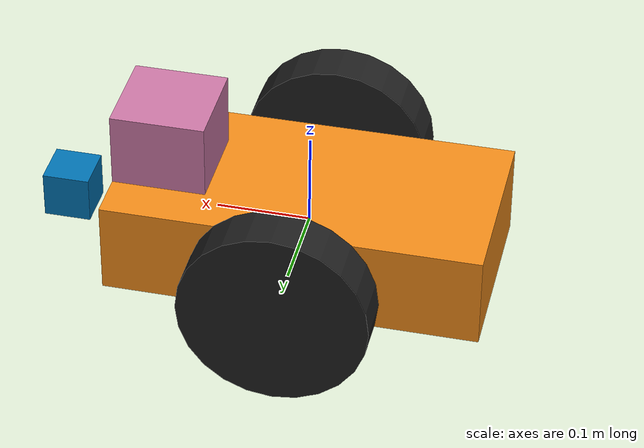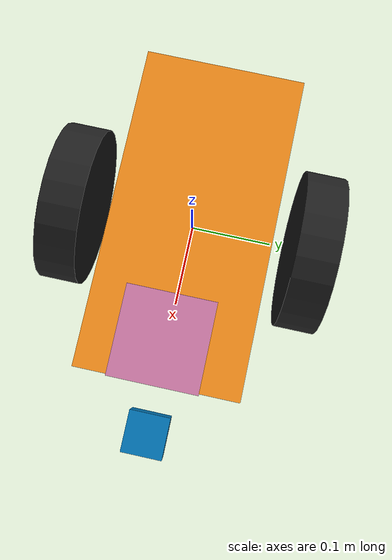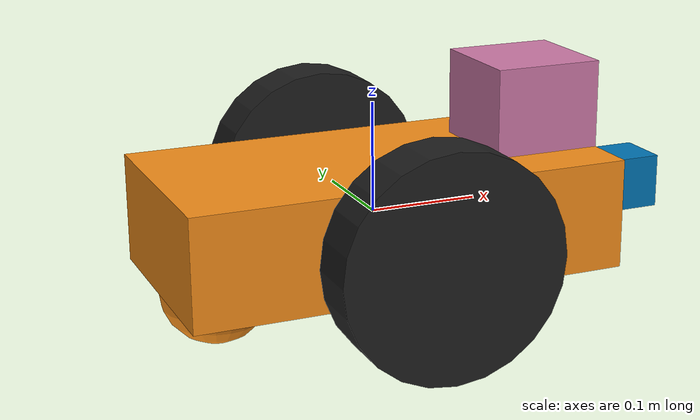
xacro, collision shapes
<?xml version='1.0'?>

<robot name="my_robot" xmlns:xacro="http://www.ros.org/wiki/xacro">

  <!-- Import all Gazebo-customization elements, including Gazebo colors -->
  <xacro:include filename="$(find my_robot)/urdf/my_robot.gazebo"/>

  <link name="robot_footprint"></link>

  <joint name="robot_footprint_joint" type="fixed">
    <origin xyz="0 0 0" rpy="0 0 0" />
    <parent link="robot_footprint"/>
    <child link="chassis" />
  </joint>

  <link name='chassis'>
    <pose>0 0 0.1 0 0 0</pose>

    <inertial>
      <mass value="15.0"/>
      <origin xyz="0.0 0 0" rpy=" 0 0 0"/>
      <inertia
          ixx="0.1" ixy="0" ixz="0"
          iyy="0.1" iyz="0"
          izz="0.1"
      />
    </inertial>

    <collision name='collision'>
      <origin xyz="0 0 0" rpy=" 0 0 0"/>
      <geometry>
        <box size=".4 .2 .1"/>
      </geometry>
    </collision>

    <visual name='chassis_visual'>
      <origin xyz="0 0 0" rpy=" 0 0 0"/>
      <geometry>
        <box size=".4 .2 .1"/>
      </geometry>
    </visual>

    <collision name='back_caster_collision'>
      <origin xyz="-0.15 0 -0.05" rpy=" 0 0 0"/>
      <geometry>
        <sphere radius="0.0499"/>
      </geometry>
    </collision>

    <visual name='back_caster_visual'>
      <origin xyz="-0.15 0 -0.05" rpy=" 0 0 0"/>
      <geometry>
        <sphere radius="0.05"/>
      </geometry>
    </visual>

    <collision name='front_caster_collision'>
      <origin xyz="0.15 0 -0.05" rpy=" 0 0 0"/>
      <geometry>
        <sphere radius="0.0499"/>
      </geometry>
    </collision>

    <visual name='front_caster_visual'>
      <origin xyz="0.15 0 -0.05" rpy=" 0 0 0"/>
      <geometry>
        <sphere radius="0.05"/>
      </geometry>
    </visual>

  </link>

  <joint type="continuous" name="left_wheel_hinge">
    <origin xyz="0 0.15 0" rpy="0 0 0"/>
    <child link="left_wheel"/>
    <parent link="chassis"/>
    <axis xyz="0 1 0" rpy="0 0 0"/>
    <limit effort="10000" velocity="1000"/>
    <dynamics damping="1.0" friction="1.0"/>
  </joint>

  <link name='left_wheel'>
    <inertial>
      <mass value="5"/>
      <origin xyz="0.0 0 0" rpy=" 0 1.5707 1.5707"/>
      <inertia
          ixx="0.1" ixy="0" ixz="0"
          iyy="0.1" iyz="0"
          izz="0.1"
      />
    </inertial>

    <collision name='left_wheel_collision'>
      <origin xyz="0.0 0 0" rpy=" 0 1.5707 1.5707"/>
      <geometry>
        <cylinder length="0.05" radius="0.1"/>
      </geometry>
    </collision>

    <visual name='left_wheel_visual'>
      <origin xyz="0.0 0.0 0.0" rpy=" 0 0 0"/>
      <geometry>
        <mesh filename="package://my_robot/meshes/wheel.dae" scale="0.6 0.6 0.6"/>
      </geometry>
    </visual>
  </link>

  <joint type="continuous" name="right_wheel_hinge">
    <origin xyz="0 -0.15 0" rpy="0 0 0"/>
    <child link="right_wheel"/>
    <parent link="chassis"/>
    <axis xyz="0 1 0" rpy="0 0 0"/>
    <limit effort="10000" velocity="1000"/>
    <dynamics damping="1.0" friction="1.0"/>
  </joint>

  <link name='right_wheel'>
    <inertial>
      <mass value="5"/>
      <origin xyz="0.0 0 0" rpy=" 0 1.5707 1.5707"/>
      <inertia
          ixx="0.1" ixy="0" ixz="0"
          iyy="0.1" iyz="0"
          izz="0.1"
      />
    </inertial>

    <collision name='right_wheel_collision'>
      <origin xyz="0.0 0 0" rpy=" 0 1.5707 1.5707"/>
      <geometry>
        <cylinder length="0.05" radius="0.1"/>
      </geometry>
    </collision>

    <visual name='right_wheel_visual'>
      <origin xyz="0.0 0 0" rpy=" 0 0 0"/>
      <geometry>
        <mesh filename="package://my_robot/meshes/wheel.dae" scale="0.6 0.6 0.6"/>
      </geometry>
    </visual>
  </link>

  <joint type="fixed" name="camera_joint">
    <origin xyz="0.26 0 0" rpy="0 0 0"/>
    <child link="camera_link"/>
    <parent link="chassis"/>
    <axis xyz="0 1 0" rpy="0 0 0"/>
  </joint>

  <link name='camera_link'>
    <inertial>
      <mass value="0.1"/>
      <origin xyz="0 0 0" rpy=" 0 0 0"/>
      <inertia
          ixx="1e-6" ixy="0" ixz="0"
          iyy="1e-6" iyz="0"
          izz="1e-6"
      />
    </inertial>

    <collision name='collision'>
      <origin xyz="0 0 0" rpy=" 0 0 0"/>
      <geometry>
        <box size="0.05 0.05 0.05"/>
      </geometry>
    </collision>

    <visual name='visual'>
      <origin xyz="0 0 0" rpy=" 0 0 0"/>
      <geometry>
        <mesh filename="package://my_robot/meshes/kinect.dae" scale="1 1 1"/>
      </geometry>
    </visual>
  </link>

  <joint name="camera_optical_joint" type="fixed">
    <origin xyz="0 0 0" rpy="-1.5707 0 -1.5707"/>
    <parent link="camera_link"/>
    <child link="camera_link_optical"/>
  </joint>

  <link name="camera_link_optical">
  </link>

  <joint type="fixed" name="hokuyo_joint">
    <origin xyz="0.15 0 0.08" rpy="0 0 0"/>
    <child link="hokuyo"/>
    <parent link="chassis"/>
    <axis xyz="0 1 0" rpy="0 0 0"/>
  </joint>

  <link name='hokuyo'>
    <inertial>
      <mass value="1e-5"/>
      <origin xyz="0 0 0" rpy=" 0 0 0"/>
      <inertia
          ixx="1e-6" ixy="0" ixz="0"
          iyy="1e-6" iyz="0"
          izz="1e-6"
      />
    </inertial>

    <collision name='collision'>
      <origin xyz="0 0 0" rpy=" 0 0 0"/>
      <geometry>
        <box size="0.1 0.1 0.1"/>
      </geometry>
    </collision>

    <visual name='visual'>
      <origin xyz="0 0 0" rpy=" 0 0 0"/>
      <geometry>
        <mesh filename="package://my_robot/meshes/hokuyo.dae" scale="1 1 1"/>
      </geometry>
    </visual>
  </link>

</robot>
